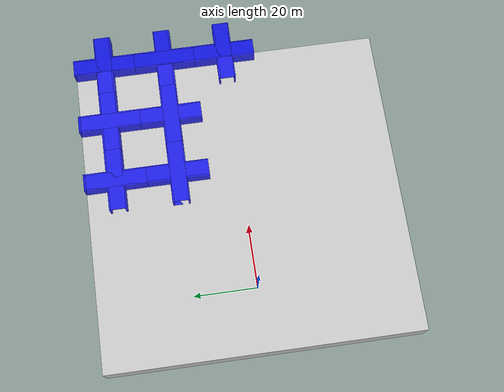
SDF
<sdf version="1.6">
 <world name="default">
  <model name="ground_plane">
   <static>true</static>
   <pose>30 0 0 0 0 0</pose>
   <link name="link">
    <collision name="collision">
     <pose>0 0 -5 0 0 0</pose>
     <geometry><box><size>100 100 10</size></box></geometry>
    </collision>
    <visual name="visual">
     <pose>0 0 -5 0 0 0</pose>
     <geometry><box><size>100 100 10</size></box></geometry>
     <material>
      <ambient>0.8 0.8 0.8 1</ambient>
      <diffuse>0.8 0.8 0.8 1</diffuse>
      <specular>0.8 0.8 0.8 1</specular>
      <emissive>0.8 0.8 0.8 1</emissive>
     </material>
    </visual>
   </link>
  </model>
  <model name="tunnel_tile_1_tile_8">
   <pose>40 20 0 0 0 3.141592653589793</pose>
   <static>true</static>
   <link name="link">
    <collision name="collision_0">
     <pose>0 0 -0.25 0 0 0</pose>
     <geometry><box><size>5 20 0.5</size></box></geometry>
    </collision>
    <visual name="visual_0">
     <pose>0 0 -0.25 0 0 0</pose>
     <geometry><box><size>5 20 0.5</size></box></geometry>
     <material><ambient>0 0 1 0.8</ambient><diffuse>0 0 1 0.8</diffuse><specular>1 1 1 0.8</specular></material>
    </visual>
    <collision name="collision_1">
     <pose>0 0 4.25 0 0 0</pose>
     <geometry><box><size>5 20 0.5</size></box></geometry>
    </collision>
    <visual name="visual_1">
     <pose>0 0 4.25 0 0 0</pose>
     <geometry><box><size>5 20 0.5</size></box></geometry>
     <material><ambient>0 0 1 0.8</ambient><diffuse>0 0 1 0.8</diffuse><specular>1 1 1 0.8</specular></material>
    </visual>
    <collision name="collision_2">
     <pose>0 0 -0.25 0 0 1.57</pose>
     <geometry><box><size>5 20 0.5</size></box></geometry>
    </collision>
    <visual name="visual_2">
     <pose>0 0 -0.25 0 0 1.57</pose>
     <geometry><box><size>5 20 0.5</size></box></geometry>
     <material><ambient>0 0 1 0.8</ambient><diffuse>0 0 1 0.8</diffuse><specular>1 1 1 0.8</specular></material>
    </visual>
    <collision name="collision_3">
     <pose>0 0 4.25 0 0 1.57</pose>
     <geometry><box><size>5 20 0.5</size></box></geometry>
    </collision>
    <visual name="visual_3">
     <pose>0 0 4.25 0 0 1.57</pose>
     <geometry><box><size>5 20 0.5</size></box></geometry>
     <material><ambient>0 0 1 0.8</ambient><diffuse>0 0 1 0.8</diffuse><specular>1 1 1 0.8</specular></material>
    </visual>
    <collision name="collision_4">
     <pose>-2.5 6.25 2 3.14 -1.57 0</pose>
     <geometry><box><size>5 7.5 0.5</size></box></geometry>
    </collision>
    <visual name="visual_4">
     <pose>-2.5 6.25 2 3.14 -1.57 0</pose>
     <geometry><box><size>5 7.5 0.5</size></box></geometry>
     <material><ambient>0 0 1 0.8</ambient><diffuse>0 0 1 0.8</diffuse><specular>1 1 1 0.8</specular></material>
    </visual>
    <collision name="collision_5">
     <pose>2.5 6.25 2 3.14 -1.57 0</pose>
     <geometry><box><size>5 7.5 0.5</size></box></geometry>
    </collision>
    <visual name="visual_5">
     <pose>2.5 6.25 2 3.14 -1.57 0</pose>
     <geometry><box><size>5 7.5 0.5</size></box></geometry>
     <material><ambient>0 0 1 0.8</ambient><diffuse>0 0 1 0.8</diffuse><specular>1 1 1 0.8</specular></material>
    </visual>
    <collision name="collision_6">
     <pose>-2.5 -6.25 2 3.14 -1.57 0</pose>
     <geometry><box><size>5 7.5 0.5</size></box></geometry>
    </collision>
    <visual name="visual_6">
     <pose>-2.5 -6.25 2 3.14 -1.57 0</pose>
     <geometry><box><size>5 7.5 0.5</size></box></geometry>
     <material><ambient>0 0 1 0.8</ambient><diffuse>0 0 1 0.8</diffuse><specular>1 1 1 0.8</specular></material>
    </visual>
    <collision name="collision_7">
     <pose>2.5 -6.25 2 3.14 -1.57 0</pose>
     <geometry><box><size>5 7.5 0.5</size></box></geometry>
    </collision>
    <visual name="visual_7">
     <pose>2.5 -6.25 2 3.14 -1.57 0</pose>
     <geometry><box><size>5 7.5 0.5</size></box></geometry>
     <material><ambient>0 0 1 0.8</ambient><diffuse>0 0 1 0.8</diffuse><specular>1 1 1 0.8</specular></material>
    </visual>
    <collision name="collision_8">
     <pose>6.25 2.5 2 1.57 1.57 0</pose>
     <geometry><box><size>5 7.5 0.5</size></box></geometry>
    </collision>
    <visual name="visual_8">
     <pose>6.25 2.5 2 1.57 1.57 0</pose>
     <geometry><box><size>5 7.5 0.5</size></box></geometry>
     <material><ambient>0 0 1 0.8</ambient><diffuse>0 0 1 0.8</diffuse><specular>1 1 1 0.8</specular></material>
    </visual>
    <collision name="collision_9">
     <pose>-6.25 2.5 2 1.57 1.57 0</pose>
     <geometry><box><size>5 7.5 0.5</size></box></geometry>
    </collision>
    <visual name="visual_9">
     <pose>-6.25 2.5 2 1.57 1.57 0</pose>
     <geometry><box><size>5 7.5 0.5</size></box></geometry>
     <material><ambient>0 0 1 0.8</ambient><diffuse>0 0 1 0.8</diffuse><specular>1 1 1 0.8</specular></material>
    </visual>
    <collision name="collision_10">
     <pose>6.25 -2.5 2 1.57 1.57 0</pose>
     <geometry><box><size>5 7.5 0.5</size></box></geometry>
    </collision>
    <visual name="visual_10">
     <pose>6.25 -2.5 2 1.57 1.57 0</pose>
     <geometry><box><size>5 7.5 0.5</size></box></geometry>
     <material><ambient>0 0 1 0.8</ambient><diffuse>0 0 1 0.8</diffuse><specular>1 1 1 0.8</specular></material>
    </visual>
    <collision name="collision_11">
     <pose>-6.25 -2.5 2 1.57 1.57 0</pose>
     <geometry><box><size>5 7.5 0.5</size></box></geometry>
    </collision>
    <visual name="visual_11">
     <pose>-6.25 -2.5 2 1.57 1.57 0</pose>
     <geometry><box><size>5 7.5 0.5</size></box></geometry>
     <material><ambient>0 0 1 0.8</ambient><diffuse>0 0 1 0.8</diffuse><specular>1 1 1 0.8</specular></material>
    </visual>
   </link>
  </model>
  <model name="tunnel_tile_1_tile_9">
   <pose>40 40 0 0 0 1.5707963267948966</pose>
   <static>true</static>
   <link name="link">
    <collision name="collision_0">
     <pose>0 0 -0.25 0 0 0</pose>
     <geometry><box><size>5 20 0.5</size></box></geometry>
    </collision>
    <visual name="visual_0">
     <pose>0 0 -0.25 0 0 0</pose>
     <geometry><box><size>5 20 0.5</size></box></geometry>
     <material><ambient>0 0 1 0.8</ambient><diffuse>0 0 1 0.8</diffuse><specular>1 1 1 0.8</specular></material>
    </visual>
    <collision name="collision_1">
     <pose>0 0 4.25 0 0 0</pose>
     <geometry><box><size>5 20 0.5</size></box></geometry>
    </collision>
    <visual name="visual_1">
     <pose>0 0 4.25 0 0 0</pose>
     <geometry><box><size>5 20 0.5</size></box></geometry>
     <material><ambient>0 0 1 0.8</ambient><diffuse>0 0 1 0.8</diffuse><specular>1 1 1 0.8</specular></material>
    </visual>
    <collision name="collision_2">
     <pose>0 0 -0.25 0 0 1.57</pose>
     <geometry><box><size>5 20 0.5</size></box></geometry>
    </collision>
    <visual name="visual_2">
     <pose>0 0 -0.25 0 0 1.57</pose>
     <geometry><box><size>5 20 0.5</size></box></geometry>
     <material><ambient>0 0 1 0.8</ambient><diffuse>0 0 1 0.8</diffuse><specular>1 1 1 0.8</specular></material>
    </visual>
    <collision name="collision_3">
     <pose>0 0 4.25 0 0 1.57</pose>
     <geometry><box><size>5 20 0.5</size></box></geometry>
    </collision>
    <visual name="visual_3">
     <pose>0 0 4.25 0 0 1.57</pose>
     <geometry><box><size>5 20 0.5</size></box></geometry>
     <material><ambient>0 0 1 0.8</ambient><diffuse>0 0 1 0.8</diffuse><specular>1 1 1 0.8</specular></material>
    </visual>
    <collision name="collision_4">
     <pose>-2.5 6.25 2 3.14 -1.57 0</pose>
     <geometry><box><size>5 7.5 0.5</size></box></geometry>
    </collision>
    <visual name="visual_4">
     <pose>-2.5 6.25 2 3.14 -1.57 0</pose>
     <geometry><box><size>5 7.5 0.5</size></box></geometry>
     <material><ambient>0 0 1 0.8</ambient><diffuse>0 0 1 0.8</diffuse><specular>1 1 1 0.8</specular></material>
    </visual>
    <collision name="collision_5">
     <pose>2.5 6.25 2 3.14 -1.57 0</pose>
     <geometry><box><size>5 7.5 0.5</size></box></geometry>
    </collision>
    <visual name="visual_5">
     <pose>2.5 6.25 2 3.14 -1.57 0</pose>
     <geometry><box><size>5 7.5 0.5</size></box></geometry>
     <material><ambient>0 0 1 0.8</ambient><diffuse>0 0 1 0.8</diffuse><specular>1 1 1 0.8</specular></material>
    </visual>
    <collision name="collision_6">
     <pose>-2.5 -6.25 2 3.14 -1.57 0</pose>
     <geometry><box><size>5 7.5 0.5</size></box></geometry>
    </collision>
    <visual name="visual_6">
     <pose>-2.5 -6.25 2 3.14 -1.57 0</pose>
     <geometry><box><size>5 7.5 0.5</size></box></geometry>
     <material><ambient>0 0 1 0.8</ambient><diffuse>0 0 1 0.8</diffuse><specular>1 1 1 0.8</specular></material>
    </visual>
    <collision name="collision_7">
     <pose>2.5 -6.25 2 3.14 -1.57 0</pose>
     <geometry><box><size>5 7.5 0.5</size></box></geometry>
    </collision>
    <visual name="visual_7">
     <pose>2.5 -6.25 2 3.14 -1.57 0</pose>
     <geometry><box><size>5 7.5 0.5</size></box></geometry>
     <material><ambient>0 0 1 0.8</ambient><diffuse>0 0 1 0.8</diffuse><specular>1 1 1 0.8</specular></material>
    </visual>
    <collision name="collision_8">
     <pose>6.25 2.5 2 1.57 1.57 0</pose>
     <geometry><box><size>5 7.5 0.5</size></box></geometry>
    </collision>
    <visual name="visual_8">
     <pose>6.25 2.5 2 1.57 1.57 0</pose>
     <geometry><box><size>5 7.5 0.5</size></box></geometry>
     <material><ambient>0 0 1 0.8</ambient><diffuse>0 0 1 0.8</diffuse><specular>1 1 1 0.8</specular></material>
    </visual>
    <collision name="collision_9">
     <pose>-6.25 2.5 2 1.57 1.57 0</pose>
     <geometry><box><size>5 7.5 0.5</size></box></geometry>
    </collision>
    <visual name="visual_9">
     <pose>-6.25 2.5 2 1.57 1.57 0</pose>
     <geometry><box><size>5 7.5 0.5</size></box></geometry>
     <material><ambient>0 0 1 0.8</ambient><diffuse>0 0 1 0.8</diffuse><specular>1 1 1 0.8</specular></material>
    </visual>
    <collision name="collision_10">
     <pose>6.25 -2.5 2 1.57 1.57 0</pose>
     <geometry><box><size>5 7.5 0.5</size></box></geometry>
    </collision>
    <visual name="visual_10">
     <pose>6.25 -2.5 2 1.57 1.57 0</pose>
     <geometry><box><size>5 7.5 0.5</size></box></geometry>
     <material><ambient>0 0 1 0.8</ambient><diffuse>0 0 1 0.8</diffuse><specular>1 1 1 0.8</specular></material>
    </visual>
    <collision name="collision_11">
     <pose>-6.25 -2.5 2 1.57 1.57 0</pose>
     <geometry><box><size>5 7.5 0.5</size></box></geometry>
    </collision>
    <visual name="visual_11">
     <pose>-6.25 -2.5 2 1.57 1.57 0</pose>
     <geometry><box><size>5 7.5 0.5</size></box></geometry>
     <material><ambient>0 0 1 0.8</ambient><diffuse>0 0 1 0.8</diffuse><specular>1 1 1 0.8</specular></material>
    </visual>
   </link>
  </model>
  <model name="tunnel_tile_1_tile_13">
   <pose>60 20 0 0 0 1.5707963267948966</pose>
   <static>true</static>
   <link name="link">
    <collision name="collision_0">
     <pose>0 0 -0.25 0 0 0</pose>
     <geometry><box><size>5 20 0.5</size></box></geometry>
    </collision>
    <visual name="visual_0">
     <pose>0 0 -0.25 0 0 0</pose>
     <geometry><box><size>5 20 0.5</size></box></geometry>
     <material><ambient>0 0 1 0.8</ambient><diffuse>0 0 1 0.8</diffuse><specular>1 1 1 0.8</specular></material>
    </visual>
    <collision name="collision_1">
     <pose>0 0 4.25 0 0 0</pose>
     <geometry><box><size>5 20 0.5</size></box></geometry>
    </collision>
    <visual name="visual_1">
     <pose>0 0 4.25 0 0 0</pose>
     <geometry><box><size>5 20 0.5</size></box></geometry>
     <material><ambient>0 0 1 0.8</ambient><diffuse>0 0 1 0.8</diffuse><specular>1 1 1 0.8</specular></material>
    </visual>
    <collision name="collision_2">
     <pose>0 0 -0.25 0 0 1.57</pose>
     <geometry><box><size>5 20 0.5</size></box></geometry>
    </collision>
    <visual name="visual_2">
     <pose>0 0 -0.25 0 0 1.57</pose>
     <geometry><box><size>5 20 0.5</size></box></geometry>
     <material><ambient>0 0 1 0.8</ambient><diffuse>0 0 1 0.8</diffuse><specular>1 1 1 0.8</specular></material>
    </visual>
    <collision name="collision_3">
     <pose>0 0 4.25 0 0 1.57</pose>
     <geometry><box><size>5 20 0.5</size></box></geometry>
    </collision>
    <visual name="visual_3">
     <pose>0 0 4.25 0 0 1.57</pose>
     <geometry><box><size>5 20 0.5</size></box></geometry>
     <material><ambient>0 0 1 0.8</ambient><diffuse>0 0 1 0.8</diffuse><specular>1 1 1 0.8</specular></material>
    </visual>
    <collision name="collision_4">
     <pose>-2.5 6.25 2 3.14 -1.57 0</pose>
     <geometry><box><size>5 7.5 0.5</size></box></geometry>
    </collision>
    <visual name="visual_4">
     <pose>-2.5 6.25 2 3.14 -1.57 0</pose>
     <geometry><box><size>5 7.5 0.5</size></box></geometry>
     <material><ambient>0 0 1 0.8</ambient><diffuse>0 0 1 0.8</diffuse><specular>1 1 1 0.8</specular></material>
    </visual>
    <collision name="collision_5">
     <pose>2.5 6.25 2 3.14 -1.57 0</pose>
     <geometry><box><size>5 7.5 0.5</size></box></geometry>
    </collision>
    <visual name="visual_5">
     <pose>2.5 6.25 2 3.14 -1.57 0</pose>
     <geometry><box><size>5 7.5 0.5</size></box></geometry>
     <material><ambient>0 0 1 0.8</ambient><diffuse>0 0 1 0.8</diffuse><specular>1 1 1 0.8</specular></material>
    </visual>
    <collision name="collision_6">
     <pose>-2.5 -6.25 2 3.14 -1.57 0</pose>
     <geometry><box><size>5 7.5 0.5</size></box></geometry>
    </collision>
    <visual name="visual_6">
     <pose>-2.5 -6.25 2 3.14 -1.57 0</pose>
     <geometry><box><size>5 7.5 0.5</size></box></geometry>
     <material><ambient>0 0 1 0.8</ambient><diffuse>0 0 1 0.8</diffuse><specular>1 1 1 0.8</specular></material>
    </visual>
    <collision name="collision_7">
     <pose>2.5 -6.25 2 3.14 -1.57 0</pose>
     <geometry><box><size>5 7.5 0.5</size></box></geometry>
    </collision>
    <visual name="visual_7">
     <pose>2.5 -6.25 2 3.14 -1.57 0</pose>
     <geometry><box><size>5 7.5 0.5</size></box></geometry>
     <material><ambient>0 0 1 0.8</ambient><diffuse>0 0 1 0.8</diffuse><specular>1 1 1 0.8</specular></material>
    </visual>
    <collision name="collision_8">
     <pose>6.25 2.5 2 1.57 1.57 0</pose>
     <geometry><box><size>5 7.5 0.5</size></box></geometry>
    </collision>
    <visual name="visual_8">
     <pose>6.25 2.5 2 1.57 1.57 0</pose>
     <geometry><box><size>5 7.5 0.5</size></box></geometry>
     <material><ambient>0 0 1 0.8</ambient><diffuse>0 0 1 0.8</diffuse><specular>1 1 1 0.8</specular></material>
    </visual>
    <collision name="collision_9">
     <pose>-6.25 2.5 2 1.57 1.57 0</pose>
     <geometry><box><size>5 7.5 0.5</size></box></geometry>
    </collision>
    <visual name="visual_9">
     <pose>-6.25 2.5 2 1.57 1.57 0</pose>
     <geometry><box><size>5 7.5 0.5</size></box></geometry>
     <material><ambient>0 0 1 0.8</ambient><diffuse>0 0 1 0.8</diffuse><specular>1 1 1 0.8</specular></material>
    </visual>
    <collision name="collision_10">
     <pose>6.25 -2.5 2 1.57 1.57 0</pose>
     <geometry><box><size>5 7.5 0.5</size></box></geometry>
    </collision>
    <visual name="visual_10">
     <pose>6.25 -2.5 2 1.57 1.57 0</pose>
     <geometry><box><size>5 7.5 0.5</size></box></geometry>
     <material><ambient>0 0 1 0.8</ambient><diffuse>0 0 1 0.8</diffuse><specular>1 1 1 0.8</specular></material>
    </visual>
    <collision name="collision_11">
     <pose>-6.25 -2.5 2 1.57 1.57 0</pose>
     <geometry><box><size>5 7.5 0.5</size></box></geometry>
    </collision>
    <visual name="visual_11">
     <pose>-6.25 -2.5 2 1.57 1.57 0</pose>
     <geometry><box><size>5 7.5 0.5</size></box></geometry>
     <material><ambient>0 0 1 0.8</ambient><diffuse>0 0 1 0.8</diffuse><specular>1 1 1 0.8</specular></material>
    </visual>
   </link>
  </model>
  <model name="tunnel_tile_1_tile_14">
   <pose>60 40 0 0 0 1.5707963267948966</pose>
   <static>true</static>
   <link name="link">
    <collision name="collision_0">
     <pose>0 0 -0.25 0 0 0</pose>
     <geometry><box><size>5 20 0.5</size></box></geometry>
    </collision>
    <visual name="visual_0">
     <pose>0 0 -0.25 0 0 0</pose>
     <geometry><box><size>5 20 0.5</size></box></geometry>
     <material><ambient>0 0 1 0.8</ambient><diffuse>0 0 1 0.8</diffuse><specular>1 1 1 0.8</specular></material>
    </visual>
    <collision name="collision_1">
     <pose>0 0 4.25 0 0 0</pose>
     <geometry><box><size>5 20 0.5</size></box></geometry>
    </collision>
    <visual name="visual_1">
     <pose>0 0 4.25 0 0 0</pose>
     <geometry><box><size>5 20 0.5</size></box></geometry>
     <material><ambient>0 0 1 0.8</ambient><diffuse>0 0 1 0.8</diffuse><specular>1 1 1 0.8</specular></material>
    </visual>
    <collision name="collision_2">
     <pose>0 0 -0.25 0 0 1.57</pose>
     <geometry><box><size>5 20 0.5</size></box></geometry>
    </collision>
    <visual name="visual_2">
     <pose>0 0 -0.25 0 0 1.57</pose>
     <geometry><box><size>5 20 0.5</size></box></geometry>
     <material><ambient>0 0 1 0.8</ambient><diffuse>0 0 1 0.8</diffuse><specular>1 1 1 0.8</specular></material>
    </visual>
    <collision name="collision_3">
     <pose>0 0 4.25 0 0 1.57</pose>
     <geometry><box><size>5 20 0.5</size></box></geometry>
    </collision>
    <visual name="visual_3">
     <pose>0 0 4.25 0 0 1.57</pose>
     <geometry><box><size>5 20 0.5</size></box></geometry>
     <material><ambient>0 0 1 0.8</ambient><diffuse>0 0 1 0.8</diffuse><specular>1 1 1 0.8</specular></material>
    </visual>
    <collision name="collision_4">
     <pose>-2.5 6.25 2 3.14 -1.57 0</pose>
     <geometry><box><size>5 7.5 0.5</size></box></geometry>
    </collision>
    <visual name="visual_4">
     <pose>-2.5 6.25 2 3.14 -1.57 0</pose>
     <geometry><box><size>5 7.5 0.5</size></box></geometry>
     <material><ambient>0 0 1 0.8</ambient><diffuse>0 0 1 0.8</diffuse><specular>1 1 1 0.8</specular></material>
    </visual>
    <collision name="collision_5">
     <pose>2.5 6.25 2 3.14 -1.57 0</pose>
     <geometry><box><size>5 7.5 0.5</size></box></geometry>
    </collision>
    <visual name="visual_5">
     <pose>2.5 6.25 2 3.14 -1.57 0</pose>
     <geometry><box><size>5 7.5 0.5</size></box></geometry>
     <material><ambient>0 0 1 0.8</ambient><diffuse>0 0 1 0.8</diffuse><specular>1 1 1 0.8</specular></material>
    </visual>
    <collision name="collision_6">
     <pose>-2.5 -6.25 2 3.14 -1.57 0</pose>
     <geometry><box><size>5 7.5 0.5</size></box></geometry>
    </collision>
    <visual name="visual_6">
     <pose>-2.5 -6.25 2 3.14 -1.57 0</pose>
     <geometry><box><size>5 7.5 0.5</size></box></geometry>
     <material><ambient>0 0 1 0.8</ambient><diffuse>0 0 1 0.8</diffuse><specular>1 1 1 0.8</specular></material>
    </visual>
    <collision name="collision_7">
     <pose>2.5 -6.25 2 3.14 -1.57 0</pose>
     <geometry><box><size>5 7.5 0.5</size></box></geometry>
    </collision>
    <visual name="visual_7">
     <pose>2.5 -6.25 2 3.14 -1.57 0</pose>
     <geometry><box><size>5 7.5 0.5</size></box></geometry>
     <material><ambient>0 0 1 0.8</ambient><diffuse>0 0 1 0.8</diffuse><specular>1 1 1 0.8</specular></material>
    </visual>
    <collision name="collision_8">
     <pose>6.25 2.5 2 1.57 1.57 0</pose>
     <geometry><box><size>5 7.5 0.5</size></box></geometry>
    </collision>
    <visual name="visual_8">
     <pose>6.25 2.5 2 1.57 1.57 0</pose>
     <geometry><box><size>5 7.5 0.5</size></box></geometry>
     <material><ambient>0 0 1 0.8</ambient><diffuse>0 0 1 0.8</diffuse><specular>1 1 1 0.8</specular></material>
    </visual>
    <collision name="collision_9">
     <pose>-6.25 2.5 2 1.57 1.57 0</pose>
     <geometry><box><size>5 7.5 0.5</size></box></geometry>
    </collision>
    <visual name="visual_9">
     <pose>-6.25 2.5 2 1.57 1.57 0</pose>
     <geometry><box><size>5 7.5 0.5</size></box></geometry>
     <material><ambient>0 0 1 0.8</ambient><diffuse>0 0 1 0.8</diffuse><specular>1 1 1 0.8</specular></material>
    </visual>
    <collision name="collision_10">
     <pose>6.25 -2.5 2 1.57 1.57 0</pose>
     <geometry><box><size>5 7.5 0.5</size></box></geometry>
    </collision>
    <visual name="visual_10">
     <pose>6.25 -2.5 2 1.57 1.57 0</pose>
     <geometry><box><size>5 7.5 0.5</size></box></geometry>
     <material><ambient>0 0 1 0.8</ambient><diffuse>0 0 1 0.8</diffuse><specular>1 1 1 0.8</specular></material>
    </visual>
    <collision name="collision_11">
     <pose>-6.25 -2.5 2 1.57 1.57 0</pose>
     <geometry><box><size>5 7.5 0.5</size></box></geometry>
    </collision>
    <visual name="visual_11">
     <pose>-6.25 -2.5 2 1.57 1.57 0</pose>
     <geometry><box><size>5 7.5 0.5</size></box></geometry>
     <material><ambient>0 0 1 0.8</ambient><diffuse>0 0 1 0.8</diffuse><specular>1 1 1 0.8</specular></material>
    </visual>
   </link>
  </model>
  <model name="tunnel_tile_1_tile_17">
   <pose>80 0 0 0 0 3.141592653589793</pose>
   <static>true</static>
   <link name="link">
    <collision name="collision_0">
     <pose>0 0 -0.25 0 0 0</pose>
     <geometry><box><size>5 20 0.5</size></box></geometry>
    </collision>
    <visual name="visual_0">
     <pose>0 0 -0.25 0 0 0</pose>
     <geometry><box><size>5 20 0.5</size></box></geometry>
     <material><ambient>0 0 1 0.8</ambient><diffuse>0 0 1 0.8</diffuse><specular>1 1 1 0.8</specular></material>
    </visual>
    <collision name="collision_1">
     <pose>0 0 4.25 0 0 0</pose>
     <geometry><box><size>5 20 0.5</size></box></geometry>
    </collision>
    <visual name="visual_1">
     <pose>0 0 4.25 0 0 0</pose>
     <geometry><box><size>5 20 0.5</size></box></geometry>
     <material><ambient>0 0 1 0.8</ambient><diffuse>0 0 1 0.8</diffuse><specular>1 1 1 0.8</specular></material>
    </visual>
    <collision name="collision_2">
     <pose>0 0 -0.25 0 0 1.57</pose>
     <geometry><box><size>5 20 0.5</size></box></geometry>
    </collision>
    <visual name="visual_2">
     <pose>0 0 -0.25 0 0 1.57</pose>
     <geometry><box><size>5 20 0.5</size></box></geometry>
     <material><ambient>0 0 1 0.8</ambient><diffuse>0 0 1 0.8</diffuse><specular>1 1 1 0.8</specular></material>
    </visual>
    <collision name="collision_3">
     <pose>0 0 4.25 0 0 1.57</pose>
     <geometry><box><size>5 20 0.5</size></box></geometry>
    </collision>
    <visual name="visual_3">
     <pose>0 0 4.25 0 0 1.57</pose>
     <geometry><box><size>5 20 0.5</size></box></geometry>
     <material><ambient>0 0 1 0.8</ambient><diffuse>0 0 1 0.8</diffuse><specular>1 1 1 0.8</specular></material>
    </visual>
    <collision name="collision_4">
     <pose>-2.5 6.25 2 3.14 -1.57 0</pose>
     <geometry><box><size>5 7.5 0.5</size></box></geometry>
    </collision>
    <visual name="visual_4">
     <pose>-2.5 6.25 2 3.14 -1.57 0</pose>
     <geometry><box><size>5 7.5 0.5</size></box></geometry>
     <material><ambient>0 0 1 0.8</ambient><diffuse>0 0 1 0.8</diffuse><specular>1 1 1 0.8</specular></material>
    </visual>
    <collision name="collision_5">
     <pose>2.5 6.25 2 3.14 -1.57 0</pose>
     <geometry><box><size>5 7.5 0.5</size></box></geometry>
    </collision>
    <visual name="visual_5">
     <pose>2.5 6.25 2 3.14 -1.57 0</pose>
     <geometry><box><size>5 7.5 0.5</size></box></geometry>
     <material><ambient>0 0 1 0.8</ambient><diffuse>0 0 1 0.8</diffuse><specular>1 1 1 0.8</specular></material>
    </visual>
    <collision name="collision_6">
     <pose>-2.5 -6.25 2 3.14 -1.57 0</pose>
     <geometry><box><size>5 7.5 0.5</size></box></geometry>
    </collision>
    <visual name="visual_6">
     <pose>-2.5 -6.25 2 3.14 -1.57 0</pose>
     <geometry><box><size>5 7.5 0.5</size></box></geometry>
     <material><ambient>0 0 1 0.8</ambient><diffuse>0 0 1 0.8</diffuse><specular>1 1 1 0.8</specular></material>
    </visual>
    <collision name="collision_7">
     <pose>2.5 -6.25 2 3.14 -1.57 0</pose>
     <geometry><box><size>5 7.5 0.5</size></box></geometry>
    </collision>
    <visual name="visual_7">
     <pose>2.5 -6.25 2 3.14 -1.57 0</pose>
     <geometry><box><size>5 7.5 0.5</size></box></geometry>
     <material><ambient>0 0 1 0.8</ambient><diffuse>0 0 1 0.8</diffuse><specular>1 1 1 0.8</specular></material>
    </visual>
    <collision name="collision_8">
     <pose>6.25 2.5 2 1.57 1.57 0</pose>
     <geometry><box><size>5 7.5 0.5</size></box></geometry>
    </collision>
    <visual name="visual_8">
     <pose>6.25 2.5 2 1.57 1.57 0</pose>
     <geometry><box><size>5 7.5 0.5</size></box></geometry>
     <material><ambient>0 0 1 0.8</ambient><diffuse>0 0 1 0.8</diffuse><specular>1 1 1 0.8</specular></material>
    </visual>
    <collision name="collision_9">
     <pose>-6.25 2.5 2 1.57 1.57 0</pose>
     <geometry><box><size>5 7.5 0.5</size></box></geometry>
    </collision>
    <visual name="visual_9">
     <pose>-6.25 2.5 2 1.57 1.57 0</pose>
     <geometry><box><size>5 7.5 0.5</size></box></geometry>
     <material><ambient>0 0 1 0.8</ambient><diffuse>0 0 1 0.8</diffuse><specular>1 1 1 0.8</specular></material>
    </visual>
    <collision name="collision_10">
     <pose>6.25 -2.5 2 1.57 1.57 0</pose>
     <geometry><box><size>5 7.5 0.5</size></box></geometry>
    </collision>
    <visual name="visual_10">
     <pose>6.25 -2.5 2 1.57 1.57 0</pose>
     <geometry><box><size>5 7.5 0.5</size></box></geometry>
     <material><ambient>0 0 1 0.8</ambient><diffuse>0 0 1 0.8</diffuse><specular>1 1 1 0.8</specular></material>
    </visual>
    <collision name="collision_11">
     <pose>-6.25 -2.5 2 1.57 1.57 0</pose>
     <geometry><box><size>5 7.5 0.5</size></box></geometry>
    </collision>
    <visual name="visual_11">
     <pose>-6.25 -2.5 2 1.57 1.57 0</pose>
     <geometry><box><size>5 7.5 0.5</size></box></geometry>
     <material><ambient>0 0 1 0.8</ambient><diffuse>0 0 1 0.8</diffuse><specular>1 1 1 0.8</specular></material>
    </visual>
   </link>
  </model>
  <model name="tunnel_tile_1_tile_18">
   <pose>80 20 0 0 0 -1.5707963267948966</pose>
   <static>true</static>
   <link name="link">
    <collision name="collision_0">
     <pose>0 0 -0.25 0 0 0</pose>
     <geometry><box><size>5 20 0.5</size></box></geometry>
    </collision>
    <visual name="visual_0">
     <pose>0 0 -0.25 0 0 0</pose>
     <geometry><box><size>5 20 0.5</size></box></geometry>
     <material><ambient>0 0 1 0.8</ambient><diffuse>0 0 1 0.8</diffuse><specular>1 1 1 0.8</specular></material>
    </visual>
    <collision name="collision_1">
     <pose>0 0 4.25 0 0 0</pose>
     <geometry><box><size>5 20 0.5</size></box></geometry>
    </collision>
    <visual name="visual_1">
     <pose>0 0 4.25 0 0 0</pose>
     <geometry><box><size>5 20 0.5</size></box></geometry>
     <material><ambient>0 0 1 0.8</ambient><diffuse>0 0 1 0.8</diffuse><specular>1 1 1 0.8</specular></material>
    </visual>
    <collision name="collision_2">
     <pose>0 0 -0.25 0 0 1.57</pose>
     <geometry><box><size>5 20 0.5</size></box></geometry>
    </collision>
    <visual name="visual_2">
     <pose>0 0 -0.25 0 0 1.57</pose>
     <geometry><box><size>5 20 0.5</size></box></geometry>
     <material><ambient>0 0 1 0.8</ambient><diffuse>0 0 1 0.8</diffuse><specular>1 1 1 0.8</specular></material>
    </visual>
    <collision name="collision_3">
     <pose>0 0 4.25 0 0 1.57</pose>
     <geometry><box><size>5 20 0.5</size></box></geometry>
    </collision>
    <visual name="visual_3">
     <pose>0 0 4.25 0 0 1.57</pose>
     <geometry><box><size>5 20 0.5</size></box></geometry>
     <material><ambient>0 0 1 0.8</ambient><diffuse>0 0 1 0.8</diffuse><specular>1 1 1 0.8</specular></material>
    </visual>
    <collision name="collision_4">
     <pose>-2.5 6.25 2 3.14 -1.57 0</pose>
     <geometry><box><size>5 7.5 0.5</size></box></geometry>
    </collision>
    <visual name="visual_4">
     <pose>-2.5 6.25 2 3.14 -1.57 0</pose>
     <geometry><box><size>5 7.5 0.5</size></box></geometry>
     <material><ambient>0 0 1 0.8</ambient><diffuse>0 0 1 0.8</diffuse><specular>1 1 1 0.8</specular></material>
    </visual>
    <collision name="collision_5">
     <pose>2.5 6.25 2 3.14 -1.57 0</pose>
     <geometry><box><size>5 7.5 0.5</size></box></geometry>
    </collision>
    <visual name="visual_5">
     <pose>2.5 6.25 2 3.14 -1.57 0</pose>
     <geometry><box><size>5 7.5 0.5</size></box></geometry>
     <material><ambient>0 0 1 0.8</ambient><diffuse>0 0 1 0.8</diffuse><specular>1 1 1 0.8</specular></material>
    </visual>
    <collision name="collision_6">
     <pose>-2.5 -6.25 2 3.14 -1.57 0</pose>
     <geometry><box><size>5 7.5 0.5</size></box></geometry>
    </collision>
    <visual name="visual_6">
     <pose>-2.5 -6.25 2 3.14 -1.57 0</pose>
     <geometry><box><size>5 7.5 0.5</size></box></geometry>
     <material><ambient>0 0 1 0.8</ambient><diffuse>0 0 1 0.8</diffuse><specular>1 1 1 0.8</specular></material>
    </visual>
    <collision name="collision_7">
     <pose>2.5 -6.25 2 3.14 -1.57 0</pose>
     <geometry><box><size>5 7.5 0.5</size></box></geometry>
    </collision>
    <visual name="visual_7">
     <pose>2.5 -6.25 2 3.14 -1.57 0</pose>
     <geometry><box><size>5 7.5 0.5</size></box></geometry>
     <material><ambient>0 0 1 0.8</ambient><diffuse>0 0 1 0.8</diffuse><specular>1 1 1 0.8</specular></material>
    </visual>
    <collision name="collision_8">
     <pose>6.25 2.5 2 1.57 1.57 0</pose>
     <geometry><box><size>5 7.5 0.5</size></box></geometry>
    </collision>
    <visual name="visual_8">
     <pose>6.25 2.5 2 1.57 1.57 0</pose>
     <geometry><box><size>5 7.5 0.5</size></box></geometry>
     <material><ambient>0 0 1 0.8</ambient><diffuse>0 0 1 0.8</diffuse><specular>1 1 1 0.8</specular></material>
    </visual>
    <collision name="collision_9">
     <pose>-6.25 2.5 2 1.57 1.57 0</pose>
     <geometry><box><size>5 7.5 0.5</size></box></geometry>
    </collision>
    <visual name="visual_9">
     <pose>-6.25 2.5 2 1.57 1.57 0</pose>
     <geometry><box><size>5 7.5 0.5</size></box></geometry>
     <material><ambient>0 0 1 0.8</ambient><diffuse>0 0 1 0.8</diffuse><specular>1 1 1 0.8</specular></material>
    </visual>
    <collision name="collision_10">
     <pose>6.25 -2.5 2 1.57 1.57 0</pose>
     <geometry><box><size>5 7.5 0.5</size></box></geometry>
    </collision>
    <visual name="visual_10">
     <pose>6.25 -2.5 2 1.57 1.57 0</pose>
     <geometry><box><size>5 7.5 0.5</size></box></geometry>
     <material><ambient>0 0 1 0.8</ambient><diffuse>0 0 1 0.8</diffuse><specular>1 1 1 0.8</specular></material>
    </visual>
    <collision name="collision_11">
     <pose>-6.25 -2.5 2 1.57 1.57 0</pose>
     <geometry><box><size>5 7.5 0.5</size></box></geometry>
    </collision>
    <visual name="visual_11">
     <pose>-6.25 -2.5 2 1.57 1.57 0</pose>
     <geometry><box><size>5 7.5 0.5</size></box></geometry>
     <material><ambient>0 0 1 0.8</ambient><diffuse>0 0 1 0.8</diffuse><specular>1 1 1 0.8</specular></material>
    </visual>
   </link>
  </model>
  <model name="tunnel_tile_1_tile_19">
   <pose>80 40 0 0 0 -1.5707963267948966</pose>
   <static>true</static>
   <link name="link">
    <collision name="collision_0">
     <pose>0 0 -0.25 0 0 0</pose>
     <geometry><box><size>5 20 0.5</size></box></geometry>
    </collision>
    <visual name="visual_0">
     <pose>0 0 -0.25 0 0 0</pose>
     <geometry><box><size>5 20 0.5</size></box></geometry>
     <material><ambient>0 0 1 0.8</ambient><diffuse>0 0 1 0.8</diffuse><specular>1 1 1 0.8</specular></material>
    </visual>
    <collision name="collision_1">
     <pose>0 0 4.25 0 0 0</pose>
     <geometry><box><size>5 20 0.5</size></box></geometry>
    </collision>
    <visual name="visual_1">
     <pose>0 0 4.25 0 0 0</pose>
     <geometry><box><size>5 20 0.5</size></box></geometry>
     <material><ambient>0 0 1 0.8</ambient><diffuse>0 0 1 0.8</diffuse><specular>1 1 1 0.8</specular></material>
    </visual>
    <collision name="collision_2">
     <pose>0 0 -0.25 0 0 1.57</pose>
     <geometry><box><size>5 20 0.5</size></box></geometry>
    </collision>
    <visual name="visual_2">
     <pose>0 0 -0.25 0 0 1.57</pose>
     <geometry><box><size>5 20 0.5</size></box></geometry>
     <material><ambient>0 0 1 0.8</ambient><diffuse>0 0 1 0.8</diffuse><specular>1 1 1 0.8</specular></material>
    </visual>
    <collision name="collision_3">
     <pose>0 0 4.25 0 0 1.57</pose>
     <geometry><box><size>5 20 0.5</size></box></geometry>
    </collision>
    <visual name="visual_3">
     <pose>0 0 4.25 0 0 1.57</pose>
     <geometry><box><size>5 20 0.5</size></box></geometry>
     <material><ambient>0 0 1 0.8</ambient><diffuse>0 0 1 0.8</diffuse><specular>1 1 1 0.8</specular></material>
    </visual>
    <collision name="collision_4">
     <pose>-2.5 6.25 2 3.14 -1.57 0</pose>
     <geometry><box><size>5 7.5 0.5</size></box></geometry>
    </collision>
    <visual name="visual_4">
     <pose>-2.5 6.25 2 3.14 -1.57 0</pose>
     <geometry><box><size>5 7.5 0.5</size></box></geometry>
     <material><ambient>0 0 1 0.8</ambient><diffuse>0 0 1 0.8</diffuse><specular>1 1 1 0.8</specular></material>
    </visual>
    <collision name="collision_5">
     <pose>2.5 6.25 2 3.14 -1.57 0</pose>
     <geometry><box><size>5 7.5 0.5</size></box></geometry>
    </collision>
    <visual name="visual_5">
     <pose>2.5 6.25 2 3.14 -1.57 0</pose>
     <geometry><box><size>5 7.5 0.5</size></box></geometry>
     <material><ambient>0 0 1 0.8</ambient><diffuse>0 0 1 0.8</diffuse><specular>1 1 1 0.8</specular></material>
    </visual>
    <collision name="collision_6">
     <pose>-2.5 -6.25 2 3.14 -1.57 0</pose>
     <geometry><box><size>5 7.5 0.5</size></box></geometry>
    </collision>
    <visual name="visual_6">
     <pose>-2.5 -6.25 2 3.14 -1.57 0</pose>
     <geometry><box><size>5 7.5 0.5</size></box></geometry>
     <material><ambient>0 0 1 0.8</ambient><diffuse>0 0 1 0.8</diffuse><specular>1 1 1 0.8</specular></material>
    </visual>
    <collision name="collision_7">
     <pose>2.5 -6.25 2 3.14 -1.57 0</pose>
     <geometry><box><size>5 7.5 0.5</size></box></geometry>
    </collision>
    <visual name="visual_7">
     <pose>2.5 -6.25 2 3.14 -1.57 0</pose>
     <geometry><box><size>5 7.5 0.5</size></box></geometry>
     <material><ambient>0 0 1 0.8</ambient><diffuse>0 0 1 0.8</diffuse><specular>1 1 1 0.8</specular></material>
    </visual>
    <collision name="collision_8">
     <pose>6.25 2.5 2 1.57 1.57 0</pose>
     <geometry><box><size>5 7.5 0.5</size></box></geometry>
    </collision>
    <visual name="visual_8">
     <pose>6.25 2.5 2 1.57 1.57 0</pose>
     <geometry><box><size>5 7.5 0.5</size></box></geometry>
     <material><ambient>0 0 1 0.8</ambient><diffuse>0 0 1 0.8</diffuse><specular>1 1 1 0.8</specular></material>
    </visual>
    <collision name="collision_9">
     <pose>-6.25 2.5 2 1.57 1.57 0</pose>
     <geometry><box><size>5 7.5 0.5</size></box></geometry>
    </collision>
    <visual name="visual_9">
     <pose>-6.25 2.5 2 1.57 1.57 0</pose>
     <geometry><box><size>5 7.5 0.5</size></box></geometry>
     <material><ambient>0 0 1 0.8</ambient><diffuse>0 0 1 0.8</diffuse><specular>1 1 1 0.8</specular></material>
    </visual>
    <collision name="collision_10">
     <pose>6.25 -2.5 2 1.57 1.57 0</pose>
     <geometry><box><size>5 7.5 0.5</size></box></geometry>
    </collision>
    <visual name="visual_10">
     <pose>6.25 -2.5 2 1.57 1.57 0</pose>
     <geometry><box><size>5 7.5 0.5</size></box></geometry>
     <material><ambient>0 0 1 0.8</ambient><diffuse>0 0 1 0.8</diffuse><specular>1 1 1 0.8</specular></material>
    </visual>
    <collision name="collision_11">
     <pose>-6.25 -2.5 2 1.57 1.57 0</pose>
     <geometry><box><size>5 7.5 0.5</size></box></geometry>
    </collision>
    <visual name="visual_11">
     <pose>-6.25 -2.5 2 1.57 1.57 0</pose>
     <geometry><box><size>5 7.5 0.5</size></box></geometry>
     <material><ambient>0 0 1 0.8</ambient><diffuse>0 0 1 0.8</diffuse><specular>1 1 1 0.8</specular></material>
    </visual>
   </link>
  </model>
 </world>
</sdf>
